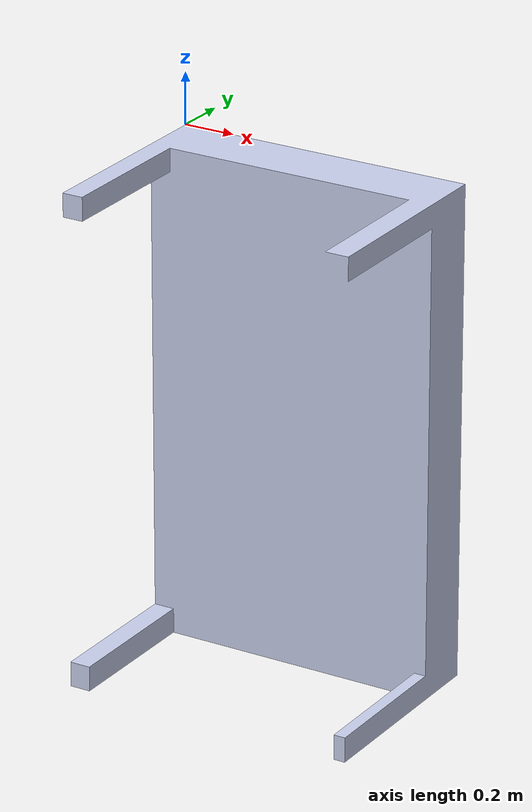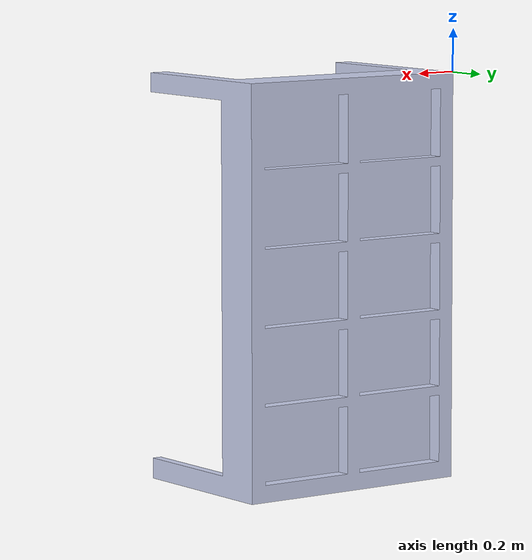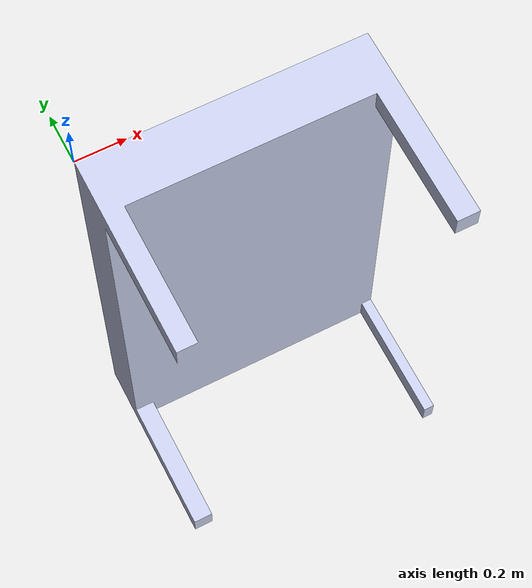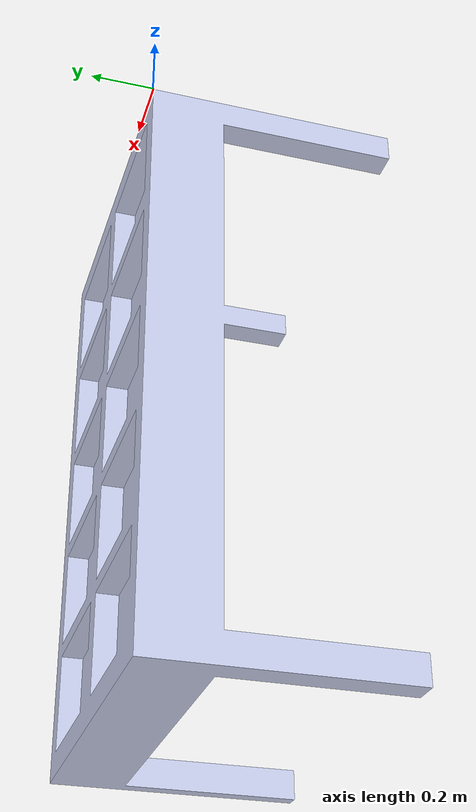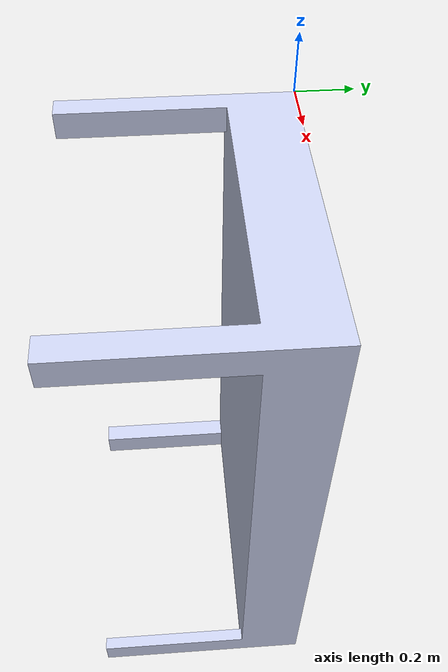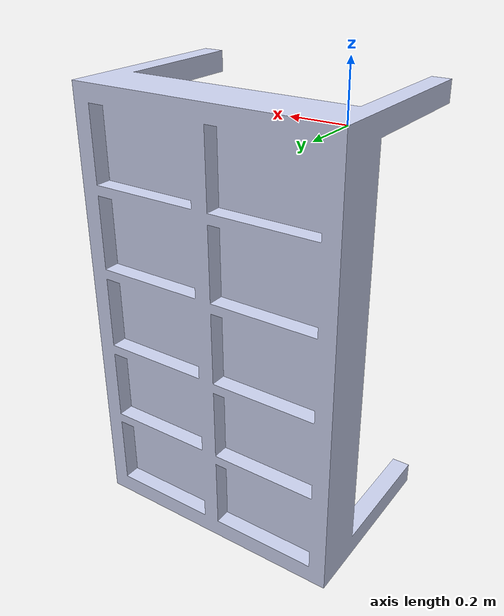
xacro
<?xml version="1.0" encoding="utf-8"?>
<robot xmlns:xacro="http://wiki.ros.org/xacro"
       name="desk">
  <link
    name="desk">
    <inertial>
      <origin
        xyz="0.57079 -0.15101 -0.94674"
        rpy="0 0 0" />
      <mass
        value="420.01" />
      <inertia
        ixx="141.97"
        ixy="-0.26135"
        ixz="-1.1031"
        iyy="188.68"
        iyz="-0.646080000000008"
        izz="54.592" />
    </inertial>
    <visual>
      <origin
        xyz="0 0 0"
        rpy="1.5707963267949 0 0" />
      <geometry>
        <mesh
          filename="package://ur3ur10car/desk/meshes/desk.STL" />
      </geometry>
      <material
        name="">
        <color
          rgba="0.79216 0.81961 0.93333 1" />

      </material>
    </visual>
    <collision>
      <origin
        xyz="0 0 0"
        rpy="1.5707963267949 0 0" />
      <geometry>
        <mesh
          filename="package://ur3ur10car/desk/meshes/desk.STL" />
      </geometry>
    </collision>
  </link>
</robot>
